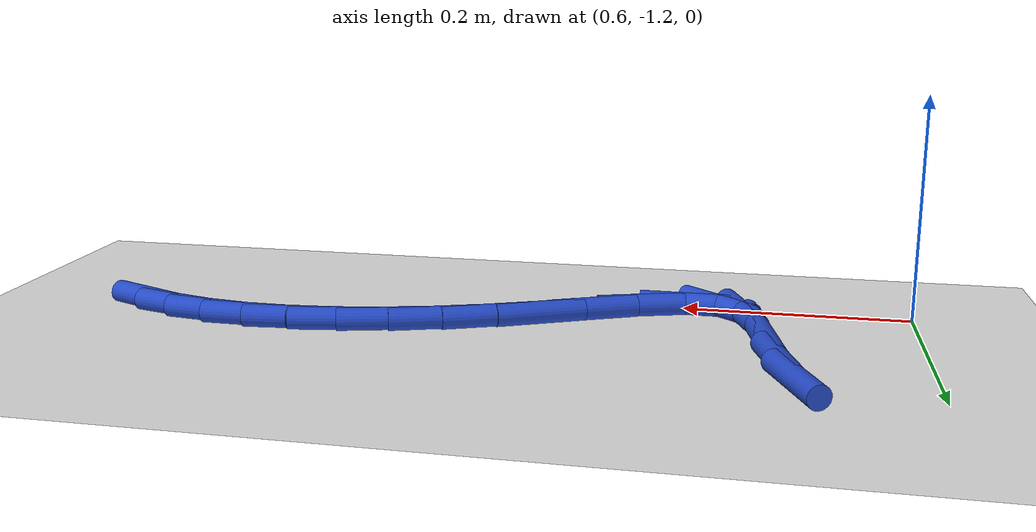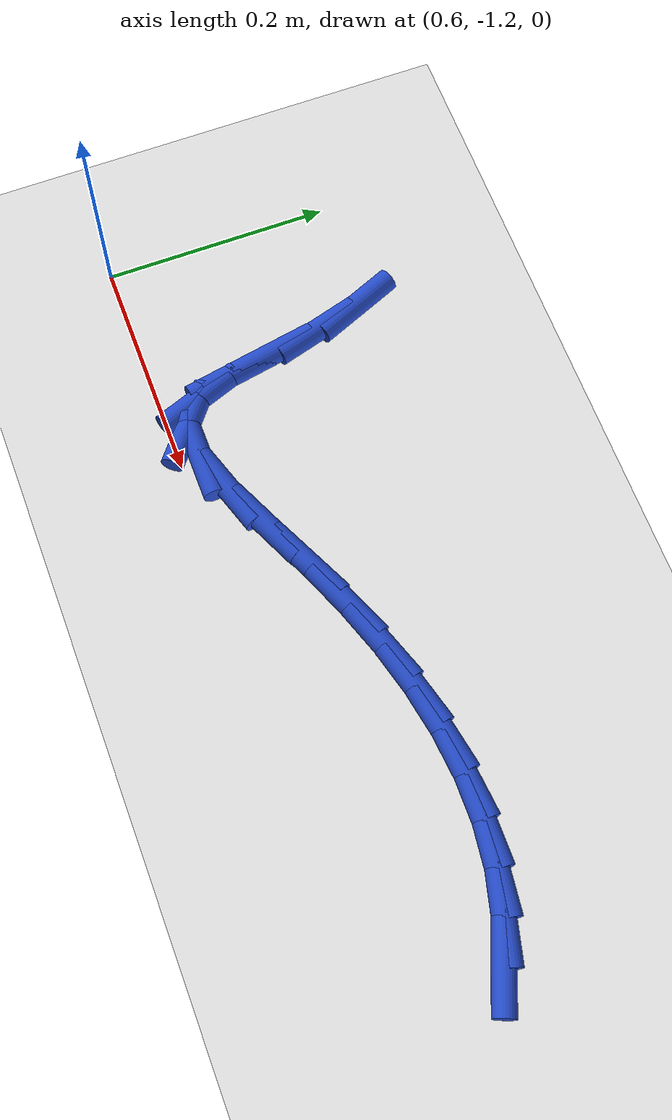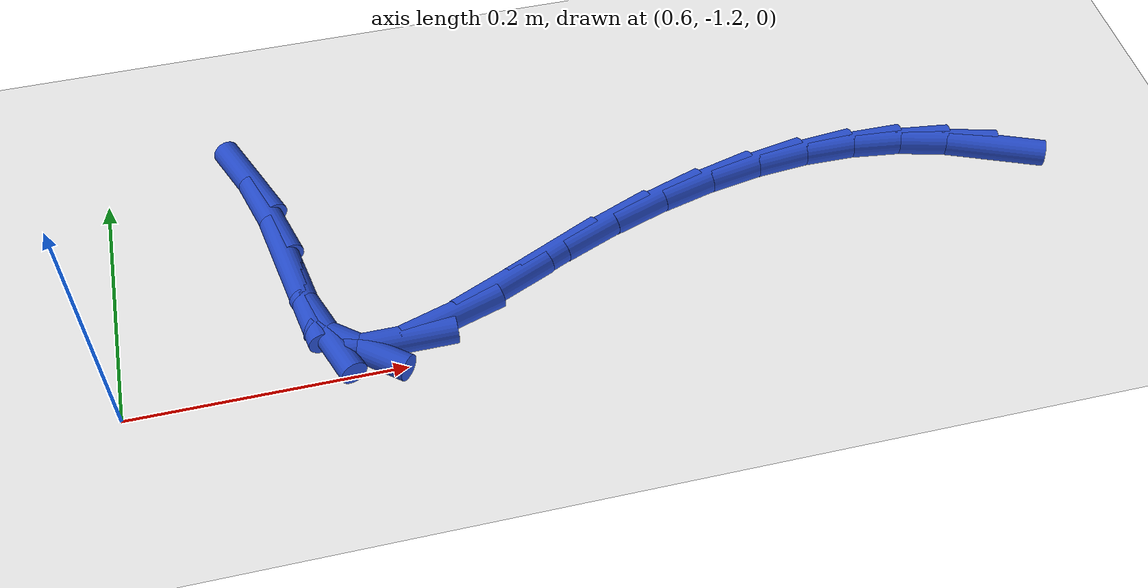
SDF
<sdf version="1.6">
 <world name="default">
  <model name="ground_plane">
   <static>1</static>
   <link name="link">
    <collision name="collision">
     <geometry><plane><normal>0 0 1</normal><size>100 100</size></plane></geometry>
     <surface><friction><ode><mu>100</mu><mu2>50</mu2></ode></friction></surface>
    </collision>
    <visual name="visual">
     <cast_shadows>0</cast_shadows>
     <geometry><plane><normal>0 0 1</normal><size>100 100</size></plane></geometry>
     <material>
      <script><uri>file://media/materials/scripts/gazebo.material</uri><name>Gazebo/WhiteGlow</name></script>
     </material>
    </visual>
   </link>
  </model>
  <model name="line">
   <link name="link_168">
    <pose>1.278265540184434 -1.1042102344230342 0.01 0 1.57 -0.39112255417359576</pose>
    <collision name="collision">
     <geometry><cylinder><radius>0.01</radius><length>0.08</length></cylinder></geometry>
    </collision>
    <visual name="visual">
     <material>
      <script><name>Gazebo/Blue</name><uri>file://media/materials/scripts/gazebo.material</uri></script>
     </material>
     <geometry><cylinder><radius>0.01</radius><length>0.08</length></cylinder></geometry>
    </visual>
   </link>
   <link name="link_169">
    <pose>1.2445939000012656 -1.0903251359451418 0.01 0 1.57 -0.2539148806786787</pose>
    <collision name="collision">
     <geometry><cylinder><radius>0.01</radius><length>0.08</length></cylinder></geometry>
    </collision>
    <visual name="visual">
     <material>
      <script><name>Gazebo/Blue</name><uri>file://media/materials/scripts/gazebo.material</uri></script>
     </material>
     <geometry><cylinder><radius>0.01</radius><length>0.08</length></cylinder></geometry>
    </visual>
   </link>
   <link name="link_170">
    <pose>1.2089487595022983 -1.0810746429564768 0.01 0 1.57 -0.1273854029576513</pose>
    <collision name="collision">
     <geometry><cylinder><radius>0.01</radius><length>0.08</length></cylinder></geometry>
    </collision>
    <visual name="visual">
     <material>
      <script><name>Gazebo/Blue</name><uri>file://media/materials/scripts/gazebo.material</uri></script>
     </material>
     <geometry><cylinder><radius>0.01</radius><length>0.08</length></cylinder></geometry>
    </visual>
   </link>
   <link name="link_171">
    <pose>1.1715285462927947 -1.0762819019284153 0.01 0 1.57 -0.013124472823247009</pose>
    <collision name="collision">
     <geometry><cylinder><radius>0.01</radius><length>0.08</length></cylinder></geometry>
    </collision>
    <visual name="visual">
     <material>
      <script><name>Gazebo/Blue</name><uri>file://media/materials/scripts/gazebo.material</uri></script>
     </material>
     <geometry><cylinder><radius>0.01</radius><length>0.08</length></cylinder></geometry>
    </visual>
   </link>
   <link name="link_172">
    <pose>1.1325316879780174 -1.075770059332333 0.01 0 1.57 0.08873713827350874</pose>
    <collision name="collision">
     <geometry><cylinder><radius>0.01</radius><length>0.08</length></cylinder></geometry>
    </collision>
    <visual name="visual">
     <material>
      <script><name>Gazebo/Blue</name><uri>file://media/materials/scripts/gazebo.material</uri></script>
     </material>
     <geometry><cylinder><radius>0.01</radius><length>0.08</length></cylinder></geometry>
    </visual>
   </link>
   <link name="link_173">
    <pose>1.0921566121632278 -1.079362261639606 0.01 0 1.57 0.17901392067543442</pose>
    <collision name="collision">
     <geometry><cylinder><radius>0.01</radius><length>0.08</length></cylinder></geometry>
    </collision>
    <visual name="visual">
     <material>
      <script><name>Gazebo/Blue</name><uri>file://media/materials/scripts/gazebo.material</uri></script>
     </material>
     <geometry><cylinder><radius>0.01</radius><length>0.08</length></cylinder></geometry>
    </visual>
   </link>
   <link name="link_174">
    <pose>1.0506017464536908 -1.0868816553216099 0.01 0 1.57 0.2589936929063189</pose>
    <collision name="collision">
     <geometry><cylinder><radius>0.01</radius><length>0.08</length></cylinder></geometry>
    </collision>
    <visual name="visual">
     <material>
      <script><name>Gazebo/Blue</name><uri>file://media/materials/scripts/gazebo.material</uri></script>
     </material>
     <geometry><cylinder><radius>0.01</radius><length>0.08</length></cylinder></geometry>
    </visual>
   </link>
   <link name="link_175">
    <pose>1.008065518454668 -1.0981513868497206 0.01 0 1.57 0.3301100210590244</pose>
    <collision name="collision">
     <geometry><cylinder><radius>0.01</radius><length>0.08</length></cylinder></geometry>
    </collision>
    <visual name="visual">
     <material>
      <script><name>Gazebo/Blue</name><uri>file://media/materials/scripts/gazebo.material</uri></script>
     </material>
     <geometry><cylinder><radius>0.01</radius><length>0.08</length></cylinder></geometry>
    </visual>
   </link>
   <link name="link_176">
    <pose>0.9647463557714226 -1.1129946026953146 0.01 0 1.57 0.3937552877453112</pose>
    <collision name="collision">
     <geometry><cylinder><radius>0.01</radius><length>0.08</length></cylinder></geometry>
    </collision>
    <visual name="visual">
     <material>
      <script><name>Gazebo/Blue</name><uri>file://media/materials/scripts/gazebo.material</uri></script>
     </material>
     <geometry><cylinder><radius>0.01</radius><length>0.08</length></cylinder></geometry>
    </visual>
   </link>
   <link name="link_177">
    <pose>0.9208426860092173 -1.1312344493297675 0.01 0 1.57 0.43967144778356015</pose>
    <collision name="collision">
     <geometry><cylinder><radius>0.01</radius><length>0.08</length></cylinder></geometry>
    </collision>
    <visual name="visual">
     <material>
      <script><name>Gazebo/Blue</name><uri>file://media/materials/scripts/gazebo.material</uri></script>
     </material>
     <geometry><cylinder><radius>0.01</radius><length>0.08</length></cylinder></geometry>
    </visual>
   </link>
   <link name="link_178">
    <pose>0.8769377343090342 -1.1518864262065704 0.01 0 1.57 0.4235236133434922</pose>
    <collision name="collision">
     <geometry><cylinder><radius>0.01</radius><length>0.08</length></cylinder></geometry>
    </collision>
    <visual name="visual">
     <material>
      <script><name>Gazebo/Blue</name><uri>file://media/materials/scripts/gazebo.material</uri></script>
     </material>
     <geometry><cylinder><radius>0.01</radius><length>0.08</length></cylinder></geometry>
    </visual>
   </link>
   <link name="link_179">
    <pose>0.8351615864628275 -1.1707193451685478 0.01 0 1.57 0.31179774349489237</pose>
    <collision name="collision">
     <geometry><cylinder><radius>0.01</radius><length>0.08</length></cylinder></geometry>
    </collision>
    <visual name="visual">
     <material>
      <script><name>Gazebo/Blue</name><uri>file://media/materials/scripts/gazebo.material</uri></script>
     </material>
     <geometry><cylinder><radius>0.01</radius><length>0.08</length></cylinder></geometry>
    </visual>
   </link>
   <link name="link_180">
    <pose>0.798032970599062 -1.1826863012335194 0.01 0 1.57 0.001805202627819297</pose>
    <collision name="collision">
     <geometry><cylinder><radius>0.01</radius><length>0.08</length></cylinder></geometry>
    </collision>
    <visual name="visual">
     <material>
      <script><name>Gazebo/Blue</name><uri>file://media/materials/scripts/gazebo.material</uri></script>
     </material>
     <geometry><cylinder><radius>0.01</radius><length>0.08</length></cylinder></geometry>
    </visual>
   </link>
   <link name="link_181">
    <pose>0.7680706148479617 -1.1827403894156103 0.01 0 1.57 -0.6840812542037862</pose>
    <collision name="collision">
     <geometry><cylinder><radius>0.01</radius><length>0.08</length></cylinder></geometry>
    </collision>
    <visual name="visual">
     <material>
      <script><name>Gazebo/Blue</name><uri>file://media/materials/scripts/gazebo.material</uri></script>
     </material>
     <geometry><cylinder><radius>0.01</radius><length>0.08</length></cylinder></geometry>
    </visual>
   </link>
   <link name="link_182">
    <pose>0.7476460907835709 -1.1660855403814328 0.01 0 1.57 -1.2195542504082417</pose>
    <collision name="collision">
     <geometry><cylinder><radius>0.01</radius><length>0.08</length></cylinder></geometry>
    </collision>
    <visual name="visual">
     <material>
      <script><name>Gazebo/Blue</name><uri>file://media/materials/scripts/gazebo.material</uri></script>
     </material>
     <geometry><cylinder><radius>0.01</radius><length>0.08</length></cylinder></geometry>
    </visual>
   </link>
   <link name="link_183">
    <pose>0.7357652066981002 -1.1336627953337002 0.01 0 1.57 -1.3877791927869862</pose>
    <collision name="collision">
     <geometry><cylinder><radius>0.01</radius><length>0.08</length></cylinder></geometry>
    </collision>
    <visual name="visual">
     <material>
      <script><name>Gazebo/Blue</name><uri>file://media/materials/scripts/gazebo.material</uri></script>
     </material>
     <geometry><cylinder><radius>0.01</radius><length>0.08</length></cylinder></geometry>
    </visual>
   </link>
   <link name="link_184">
    <pose>0.7280784397409826 -1.0921325239125097 0.01 0 1.57 -1.390196140781132</pose>
    <collision name="collision">
     <geometry><cylinder><radius>0.01</radius><length>0.08</length></cylinder></geometry>
    </collision>
    <visual name="visual">
     <material>
      <script><name>Gazebo/Blue</name><uri>file://media/materials/scripts/gazebo.material</uri></script>
     </material>
     <geometry><cylinder><radius>0.01</radius><length>0.08</length></cylinder></geometry>
    </visual>
   </link>
   <link name="link_185">
    <pose>0.7200932171446373 -1.0483993643349676 0.01 0 1.57 -1.2935979299333886</pose>
    <collision name="collision">
     <geometry><cylinder><radius>0.01</radius><length>0.08</length></cylinder></geometry>
    </collision>
    <visual name="visual">
     <material>
      <script><name>Gazebo/Blue</name><uri>file://media/materials/scripts/gazebo.material</uri></script>
     </material>
     <geometry><cylinder><radius>0.01</radius><length>0.08</length></cylinder></geometry>
    </visual>
   </link>
   <link name="link_186">
    <pose>0.7084903362534772 -1.007619320017141 0.01 0 1.57 -1.1797986764953579</pose>
    <collision name="collision">
     <geometry><cylinder><radius>0.01</radius><length>0.08</length></cylinder></geometry>
    </collision>
    <visual name="visual">
     <material>
      <script><name>Gazebo/Blue</name><uri>file://media/materials/scripts/gazebo.material</uri></script>
     </material>
     <geometry><cylinder><radius>0.01</radius><length>0.08</length></cylinder></geometry>
    </visual>
   </link>
  </model>
 </world>
</sdf>
